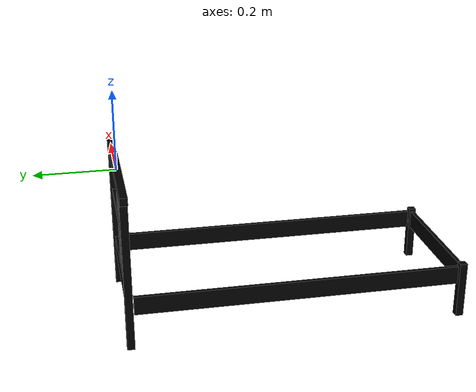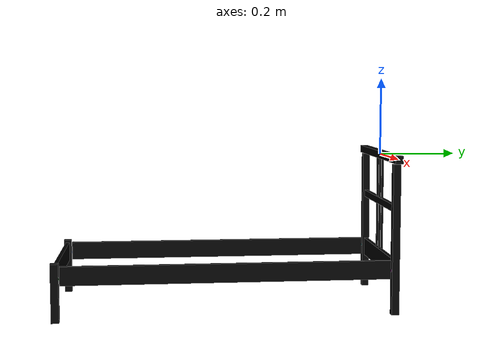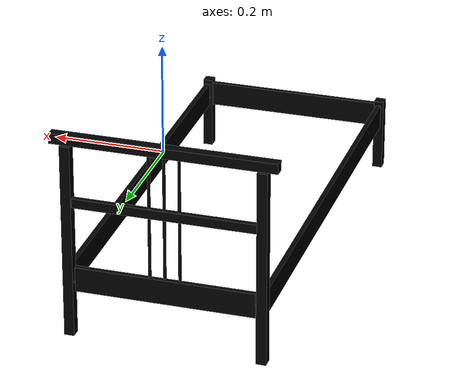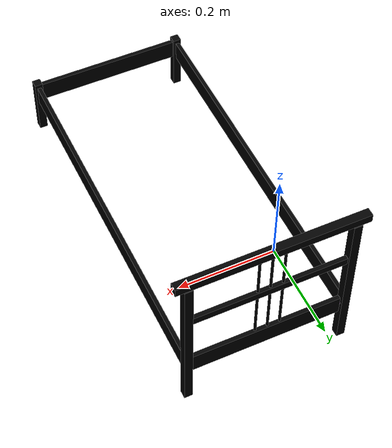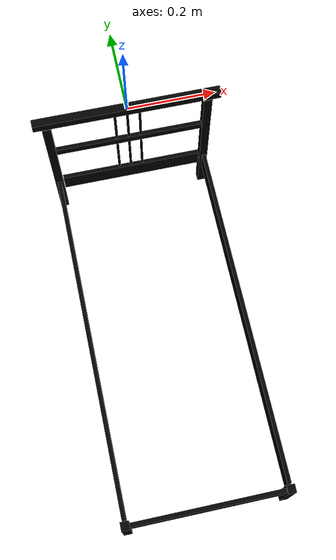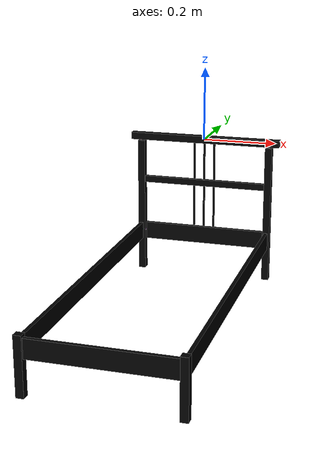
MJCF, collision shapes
<mujoco model="bed_dalselv_0270">
  <custom>
    <numeric data="-0.100755 0.02183 0.009622 1.0 0.0 0.0 0.0" name="0_part0_initpos" />
    <numeric data="0.044864 -0.122086 0.009814 0.707093 -0.707093 -0.004354 0.004354" name="9_part9_initpos" />
    <numeric data="-0.207929 -0.128858 0.009814 0.707033 -0.707033 -0.01023 0.010229" name="8_part8_initpos" />
    <numeric data="0.270941 -0.036442 0.00949 0.707107 -0.707107 -0.0 -0.0" name="7_part7_initpos" />
    <numeric data="-0.105714 0.208335 0.004796 0.707107 -0.707107 0.000417 -0.000417" name="6_part6_initpos" />
    <numeric data="-0.1019 0.299963 0.004796 0.707107 0.707107 -3.5e-05 -3.5e-05" name="5_part5_initpos" />
    <numeric data="0.165347 0.056731 0.002345 -0.707107 0.0 0.707107 0.0" name="4_part4_initpos" />
    <numeric data="-0.36839 0.044837 0.007095 -0.707107 0.0 0.707107 0.0" name="3_part3_initpos" />
    <numeric data="-0.10077 0.104425 0.009487 0.707107 0.0 0.707107 0.0" name="2_part2_initpos" />
    <numeric data="0.381998 0.246236 0.00491 0.707205 -0.707009 0.0 -0.0" name="1_part1_initpos" />
  </custom>
  <asset>
    <mesh file="bed_dalselv_0270/0.stl" name="part0" scale="0.00038 0.00038 0.00038" />
    <mesh file="bed_dalselv_0270/9.stl" name="part9" scale="0.00038 0.00038 0.00038" />
    <mesh file="bed_dalselv_0270/8.stl" name="part8" scale="0.00038 0.00038 0.00038" />
    <mesh file="bed_dalselv_0270/7.stl" name="part7" scale="0.00038 0.00038 0.00038" />
    <mesh file="bed_dalselv_0270/6.stl" name="part6" scale="0.00038 0.00038 0.00038" />
    <mesh file="bed_dalselv_0270/5.stl" name="part5" scale="0.00038 0.00038 0.00038" />
    <mesh file="bed_dalselv_0270/4.stl" name="part4" scale="0.00038 0.00038 0.00038" />
    <mesh file="bed_dalselv_0270/3.stl" name="part3" scale="0.00038 0.00038 0.00038" />
    <mesh file="bed_dalselv_0270/2.stl" name="part2" scale="0.00038 0.00038 0.00038" />
    <mesh file="bed_dalselv_0270/14.stl" name="part14" scale="0.00038 0.00038 0.00038" />
    <mesh file="bed_dalselv_0270/13.stl" name="part13" scale="0.00038 0.00038 0.00038" />
    <mesh file="bed_dalselv_0270/12.stl" name="part12" scale="0.00038 0.00038 0.00038" />
    <mesh file="bed_dalselv_0270/11.stl" name="part11" scale="0.00038 0.00038 0.00038" />
    <mesh file="bed_dalselv_0270/10.stl" name="part10" scale="0.00038 0.00038 0.00038" />
    <mesh file="bed_dalselv_0270/1.stl" name="part1" scale="0.00038 0.00038 0.00038" />
  </asset>
  <equality>
    <weld active="false" body1="2_part2" body2="6_part6" solimp="1 1 0.5" solref="0.01 0.3" />
    <weld active="false" body1="7_part7" body2="6_part6" solimp="1 1 0.5" solref="0.01 0.3" />
    <weld active="false" body1="2_part2" body2="3_part3" solimp="1 1 0.5" solref="0.01 0.3" />
    <weld active="false" body1="7_part7" body2="3_part3" solimp="1 1 0.5" solref="0.01 0.3" />
    <weld active="false" body1="9_part9" body2="5_part5" solimp="1 1 0.5" solref="0.01 0.3" />
    <weld active="false" body1="8_part8" body2="5_part5" solimp="1 1 0.5" solref="0.01 0.3" />
    <weld active="false" body1="2_part2" body2="1_part1" solimp="1 1 0.5" solref="0.01 0.3" />
    <weld active="false" body1="7_part7" body2="1_part1" solimp="1 1 0.5" solref="0.01 0.3" />
    <weld active="false" body1="9_part9" body2="4_part4" solimp="1 1 0.5" solref="0.01 0.3" />
    <weld active="false" body1="8_part8" body2="4_part4" solimp="1 1 0.5" solref="0.01 0.3" />
    <weld active="false" body1="0_part0" body2="2_part2" solimp="1 1 0.5" solref="0.01 0.3" />
    <weld active="false" body1="0_part0" body2="7_part7" solimp="1 1 0.5" solref="0.01 0.3" />
    <weld active="false" body1="9_part9" body2="3_part3" solimp="1 1 0.5" solref="0.01 0.3" />
    <weld active="false" body1="8_part8" body2="3_part3" solimp="1 1 0.5" solref="0.01 0.3" />
    <weld active="false" body1="4_part4" body2="2_part2" solimp="1 1 0.5" solref="0.01 0.3" />
    <weld active="false" body1="4_part4" body2="7_part7" solimp="1 1 0.5" solref="0.01 0.3" />
  </equality>
  <worldbody>
    <body name="0_part0" pos="1.9e-09 -1.5200000000000002e-10 0.0" quat="1 0 0 0">
      <geom conaffinity="0" contype="0" density="0" mesh="part0" name="0_part0_mesh" pos="0.0 0.0 0.0" rgba="0.82 0.71 0.55 1" type="mesh" />
      <site name="0_part0_horizontal_radius_site" pos="1.9e-09 -1.5200000000000002e-10 0.0" quat="1 0 0 0" rgba="0 0 0 0" size="0.00038" />
      <site name="0_part0_top_site" pos="1.9e-09 -1.1400000000000001e-10 0.009652009272" quat="1 0 0 0" rgba="0 0 0 0" size="0.00038" />
      <site name="0_part0_bottom_site" pos="1.9e-09 -1.1400000000000001e-10 -0.009652009272" quat="1 0 0 0" rgba="0 0 0 0" size="0.00038" />
      <site name="0_part0_corner_site8" pos="-0.2123439981 0.009652001026000001 0.009652009272" quat="1 0 0 0" rgba="0 0 0 0" size="0.0039900000000000005" />
      <site name="0_part0_corner_site7" pos="0.21234400190000002 0.009652001026000001 0.009652009272" quat="1 0 0 0" rgba="0 0 0 0" size="0.0039900000000000005" />
      <site name="0_part0_corner_site6" pos="0.21234400190000002 -0.009652001292 0.009652009272" quat="1 0 0 0" rgba="0 0 0 0" size="0.0039900000000000005" />
      <site name="0_part0_corner_site5" pos="-0.2123439981 -0.009652001292 0.009652009272" quat="1 0 0 0" rgba="0 0 0 0" size="0.0039900000000000005" />
      <site name="0_part0_corner_site4" pos="-0.2123439981 0.009652001026000001 -0.009652009272" quat="1 0 0 0" rgba="0 0 0 0" size="0.0039900000000000005" />
      <site name="0_part0_corner_site3" pos="0.21234400190000002 0.009652001026000001 -0.009652009272" quat="1 0 0 0" rgba="0 0 0 0" size="0.0039900000000000005" />
      <site name="0_part0_corner_site2" pos="0.21234400190000002 -0.009652001292 -0.009652009272" quat="1 0 0 0" rgba="0 0 0 0" size="0.0039900000000000005" />
      <site name="0_part0_corner_site1" pos="-0.2123439981 -0.009652001292 -0.009652009272" quat="1 0 0 0" rgba="0 0 0 0" size="0.0039900000000000005" />
      <geom density="50" name="noviz_collision_0_part0_0" pos="0.0 4.598e-07 0.0001350976" quat="1 0 0 0" rgba="0 0 0 0" size="0.21234399999999998 0.0096524598 0.009787109" solref="0.001 1" type="box" />
      <site name="top-tallleg,0,conn_site2" pos="-0.18506 0.0 -0.009652007600000002" quat="1 0 0 0" rgba="0.9019 0.0980 0.2941 0.3" size="0.0038" />
      <site name="top-tallleg,0,conn_site1" pos="0.18354 0.0 -0.009652007600000002" quat="1 0 0 0" rgba="0.9019 0.0980 0.2941 0.3" size="0.0038" />
    </body>
    <body name="9_part9" pos="0.18338800190000001 -0.849376031388 -0.323342009272" quat="1 0 0 0">
      <geom conaffinity="0" contype="0" density="0" mesh="part9" name="9_part9_mesh" pos="0.0 0.0 0.0" rgba="0.82 0.71 0.55 1" type="mesh" />
      <site name="9_part9_horizontal_radius_site" pos="0.0 -7.600000000000001e-11 0.0" quat="1 0 0 0" rgba="0 0 0 0" size="0.00038" />
      <site name="9_part9_top_site" pos="0.0 -3.8000000000000004e-11 0.07239" quat="1 0 0 0" rgba="0 0 0 0" size="0.00038" />
      <site name="9_part9_bottom_site" pos="0.0 -3.8000000000000004e-11 -0.07239" quat="1 0 0 0" rgba="0 0 0 0" size="0.00038" />
      <site name="9_part9_corner_site8" pos="-0.009651999999999999 0.009652032338 0.07239" quat="1 0 0 0" rgba="0 0 0 0" size="0.0039900000000000005" />
      <site name="9_part9_corner_site7" pos="0.009651999999999999 0.009652032338 0.07239" quat="1 0 0 0" rgba="0 0 0 0" size="0.0039900000000000005" />
      <site name="9_part9_corner_site6" pos="0.009651999999999999 -0.009652032452 0.07239" quat="1 0 0 0" rgba="0 0 0 0" size="0.0039900000000000005" />
      <site name="9_part9_corner_site5" pos="-0.009651999999999999 -0.009652032452 0.07239" quat="1 0 0 0" rgba="0 0 0 0" size="0.0039900000000000005" />
      <site name="9_part9_corner_site4" pos="-0.009651999999999999 0.009652032338 -0.07239" quat="1 0 0 0" rgba="0 0 0 0" size="0.0039900000000000005" />
      <site name="9_part9_corner_site3" pos="0.009651999999999999 0.009652032338 -0.07239" quat="1 0 0 0" rgba="0 0 0 0" size="0.0039900000000000005" />
      <site name="9_part9_corner_site2" pos="0.009651999999999999 -0.009652032452 -0.07239" quat="1 0 0 0" rgba="0 0 0 0" size="0.0039900000000000005" />
      <site name="9_part9_corner_site1" pos="-0.009651999999999999 -0.009652032452 -0.07239" quat="1 0 0 0" rgba="0 0 0 0" size="0.0039900000000000005" />
      <geom density="50" name="noviz_collision_9_part9_0" pos="-9.612480000000002e-05 9.62046e-05 0.00129238" quat="1 0 0 0" rgba="0 0 0 0" size="0.0095558714 0.009748170399999999 0.07368238" solref="0.001 1" type="box" />
      <site name="shortleg-sidebottom1,0,conn_site1" pos="-0.0012064962000000001 0.011248038 0.03477" quat="0.7071067 0.7071068 0 0" rgba="0.2352 0.7058 0.2941 0.3" size="0.0038" />
      <site name="shortleg-bottomboard,0,180,conn_site2" pos="-0.0088160038 4.3232600000000003e-05 0.042902" quat="0.7071067 0 0.7071068 0" rgba="1.0 0.8823 0.0980 0.3" size="0.0038" />
    </body>
    <body name="8_part8" pos="-0.1833879981 -0.849376031388 -0.323342009272" quat="1 0 0 0">
      <geom conaffinity="0" contype="0" density="0" mesh="part8" name="8_part8_mesh" pos="0.0 0.0 0.0" rgba="0.82 0.71 0.55 1" type="mesh" />
      <site name="8_part8_horizontal_radius_site" pos="0.0 -7.600000000000001e-11 0.0" quat="1 0 0 0" rgba="0 0 0 0" size="0.00038" />
      <site name="8_part8_top_site" pos="0.0 -3.8000000000000004e-11 0.07239" quat="1 0 0 0" rgba="0 0 0 0" size="0.00038" />
      <site name="8_part8_bottom_site" pos="0.0 -3.8000000000000004e-11 -0.07239" quat="1 0 0 0" rgba="0 0 0 0" size="0.00038" />
      <site name="8_part8_corner_site8" pos="-0.009651999999999999 0.009652032338 0.07239" quat="1 0 0 0" rgba="0 0 0 0" size="0.0039900000000000005" />
      <site name="8_part8_corner_site7" pos="0.009651999999999999 0.009652032338 0.07239" quat="1 0 0 0" rgba="0 0 0 0" size="0.0039900000000000005" />
      <site name="8_part8_corner_site6" pos="0.009651999999999999 -0.009652032452 0.07239" quat="1 0 0 0" rgba="0 0 0 0" size="0.0039900000000000005" />
      <site name="8_part8_corner_site5" pos="-0.009651999999999999 -0.009652032452 0.07239" quat="1 0 0 0" rgba="0 0 0 0" size="0.0039900000000000005" />
      <site name="8_part8_corner_site4" pos="-0.009651999999999999 0.009652032338 -0.07239" quat="1 0 0 0" rgba="0 0 0 0" size="0.0039900000000000005" />
      <site name="8_part8_corner_site3" pos="0.009651999999999999 0.009652032338 -0.07239" quat="1 0 0 0" rgba="0 0 0 0" size="0.0039900000000000005" />
      <site name="8_part8_corner_site2" pos="0.009651999999999999 -0.009652032452 -0.07239" quat="1 0 0 0" rgba="0 0 0 0" size="0.0039900000000000005" />
      <site name="8_part8_corner_site1" pos="-0.009651999999999999 -0.009652032452 -0.07239" quat="1 0 0 0" rgba="0 0 0 0" size="0.0039900000000000005" />
      <geom density="50" name="noviz_collision_8_part8_0" pos="9.612480000000002e-05 9.62046e-05 0.00129238" quat="1 0 0 0" rgba="0 0 0 0" size="0.009748121 0.009748170399999999 0.07368238" solref="0.001 1" type="box" />
      <site name="shortleg-bottomboard,0,180,conn_site1" pos="0.0089680038 4.3232600000000003e-05 0.044422" quat="0.7071067 0 -0.7071068 0" rgba="1.0 0.8823 0.0980 0.3" size="0.0038" />
      <site name="shortleg-sideboard,0,conn_site1" pos="0.0012065076 0.009956076 0.038342" quat="0.7071067 0.7071068 0 0" rgba="0.2627 0.3882 0.8470 0.3" size="0.0038" />
    </body>
    <body name="7_part7" pos="-0.1833879981 -1.5200000000000002e-10 -0.202692009272" quat="1 0 0 0">
      <geom conaffinity="0" contype="0" density="0" mesh="part7" name="7_part7_mesh" pos="0.0 0.0 0.0" rgba="0.82 0.71 0.55 1" type="mesh" />
      <site name="7_part7_horizontal_radius_site" pos="0.0 -1.5200000000000002e-10 0.0" quat="1 0 0 0" rgba="0 0 0 0" size="0.00038" />
      <site name="7_part7_top_site" pos="0.0 -1.1400000000000001e-10 0.19304000000000002" quat="1 0 0 0" rgba="0 0 0 0" size="0.00038" />
      <site name="7_part7_bottom_site" pos="0.0 -1.1400000000000001e-10 -0.19304000000000002" quat="1 0 0 0" rgba="0 0 0 0" size="0.00038" />
      <site name="7_part7_corner_site8" pos="-0.009651999999999999 0.009652001026000001 0.19304000000000002" quat="1 0 0 0" rgba="0 0 0 0" size="0.0039900000000000005" />
      <site name="7_part7_corner_site7" pos="0.009651999999999999 0.009652001026000001 0.19304000000000002" quat="1 0 0 0" rgba="0 0 0 0" size="0.0039900000000000005" />
      <site name="7_part7_corner_site6" pos="0.009651999999999999 -0.009652001292 0.19304000000000002" quat="1 0 0 0" rgba="0 0 0 0" size="0.0039900000000000005" />
      <site name="7_part7_corner_site5" pos="-0.009651999999999999 -0.009652001292 0.19304000000000002" quat="1 0 0 0" rgba="0 0 0 0" size="0.0039900000000000005" />
      <site name="7_part7_corner_site4" pos="-0.009651999999999999 0.009652001026000001 -0.19304000000000002" quat="1 0 0 0" rgba="0 0 0 0" size="0.0039900000000000005" />
      <site name="7_part7_corner_site3" pos="0.009651999999999999 0.009652001026000001 -0.19304000000000002" quat="1 0 0 0" rgba="0 0 0 0" size="0.0039900000000000005" />
      <site name="7_part7_corner_site2" pos="0.009651999999999999 -0.009652001292 -0.19304000000000002" quat="1 0 0 0" rgba="0 0 0 0" size="0.0039900000000000005" />
      <site name="7_part7_corner_site1" pos="-0.009651999999999999 -0.009652001292 -0.19304000000000002" quat="1 0 0 0" rgba="0 0 0 0" size="0.0039900000000000005" />
      <geom density="50" name="noviz_collision_7_part7_0" pos="6.75032e-05 -6.58616e-05 -0.0014962956000000001" quat="1 0 0 0" rgba="0 0 0 0" size="0.0097195032 0.009586138400000001 0.191543712" solref="0.001 1" type="box" />
      <site name="tallleg-top,0,conn_site2" pos="-0.0016719962 0.0 0.19304000000000002" quat="1 0 0 0" rgba="0.9019 0.0980 0.2941 0.3" size="0.0038" />
      <site name="tallleg-centerpiece,0,180,conn_site5" pos="0.0085880038 4.3232600000000003e-05 0.074632" quat="0.7071067 0 -0.7071068 0" rgba="0.9607 0.5098 0.1921 0.3" size="0.0038" />
      <site name="tallleg-bottompiece,0,180,conn_site2" pos="0.0088160038 4.3232600000000003e-05 -0.075848" quat="0.7071067 0 -0.7071068 0" rgba="0.5686 0.1176 0.7058 0.3" size="0.0038" />
      <site name="tallleg-sideboard,0,conn_site1" pos="0.0012065076 -0.008702 -0.074328" quat="0.7071067 -0.7071068 0 0" rgba="0.2745 0.9411 0.9411 0.3" size="0.0038" />
    </body>
    <body name="6_part6" pos="1.9e-09 8.6464402e-05 -0.27990800927200005" quat="1 0 0 0">
      <geom conaffinity="0" contype="0" density="0" mesh="part6" name="6_part6_mesh" pos="0.0 0.0 0.0" rgba="0.82 0.71 0.55 1" type="mesh" />
      <site name="6_part6_horizontal_radius_site" pos="-4.1800000000000006e-10 0.0 -0.0" quat="1 0 0 0" rgba="0 0 0 0" size="0.00038" />
      <site name="6_part6_top_site" pos="-4.1800000000000006e-10 0.0 0.024130000000000002" quat="1 0 0 0" rgba="0 0 0 0" size="0.00038" />
      <site name="6_part6_bottom_site" pos="-4.1800000000000006e-10 0.0 -0.024130000000000002" quat="1 0 0 0" rgba="0 0 0 0" size="0.00038" />
      <site name="6_part6_corner_site8" pos="-0.17856200041800002 0.004826001748 0.024130000000000002" quat="1 0 0 0" rgba="0 0 0 0" size="0.0039900000000000005" />
      <site name="6_part6_corner_site7" pos="0.178561999582 0.004826001748 0.024130000000000002" quat="1 0 0 0" rgba="0 0 0 0" size="0.0039900000000000005" />
      <site name="6_part6_corner_site6" pos="0.178561999582 -0.004826001748 0.024130000000000002" quat="1 0 0 0" rgba="0 0 0 0" size="0.0039900000000000005" />
      <site name="6_part6_corner_site5" pos="-0.17856200041800002 -0.004826001748 0.024130000000000002" quat="1 0 0 0" rgba="0 0 0 0" size="0.0039900000000000005" />
      <site name="6_part6_corner_site4" pos="-0.17856200041800002 0.004826001748 -0.024130000000000002" quat="1 0 0 0" rgba="0 0 0 0" size="0.0039900000000000005" />
      <site name="6_part6_corner_site3" pos="0.178561999582 0.004826001748 -0.024130000000000002" quat="1 0 0 0" rgba="0 0 0 0" size="0.0039900000000000005" />
      <site name="6_part6_corner_site2" pos="0.178561999582 -0.004826001748 -0.024130000000000002" quat="1 0 0 0" rgba="0 0 0 0" size="0.0039900000000000005" />
      <site name="6_part6_corner_site1" pos="-0.17856200041800002 -0.004826001748 -0.024130000000000002" quat="1 0 0 0" rgba="0 0 0 0" size="0.0039900000000000005" />
      <geom density="50" name="noviz_collision_6_part6_0" pos="0.0 0.0 9.10328e-05" quat="1 0 0 0" rgba="0 0 0 0" size="0.171 0.0048259999999999996 0.0242210328" solref="0.001 1" type="box" />
      <site name="bottompiece-tallleg,0,180,conn_site2" pos="-0.174572 -4.3232600000000003e-05 0.0013680152" quat="0.7071067 0 -0.7071068 0" rgba="0.5686 0.1176 0.7058 0.3" size="0.0038" />
      <site name="bottompiece-tallleg,0,180,conn_site1" pos="0.17442000000000002 -4.3232600000000003e-05 -0.0058519848000000005" quat="0.7071067 0 0.7071068 0" rgba="0.5686 0.1176 0.7058 0.3" size="0.0038" />
    </body>
    <body name="5_part5" pos="1.9e-09 -0.8492895361299999 -0.27990800927200005" quat="1 0 0 0">
      <geom conaffinity="0" contype="0" density="0" mesh="part5" name="5_part5_mesh" pos="0.0 0.0 0.0" rgba="0.82 0.71 0.55 1" type="mesh" />
      <site name="5_part5_horizontal_radius_site" pos="-4.1800000000000006e-10 0.0 0.0" quat="1 0 0 0" rgba="0 0 0 0" size="0.00038" />
      <site name="5_part5_top_site" pos="-4.1800000000000006e-10 0.0 0.024130000000000002" quat="1 0 0 0" rgba="0 0 0 0" size="0.00038" />
      <site name="5_part5_bottom_site" pos="-4.1800000000000006e-10 0.0 -0.024130000000000002" quat="1 0 0 0" rgba="0 0 0 0" size="0.00038" />
      <site name="5_part5_corner_site8" pos="-0.17856200041800002 0.0048259999999999996 0.024130000000000002" quat="1 0 0 0" rgba="0 0 0 0" size="0.0039900000000000005" />
      <site name="5_part5_corner_site7" pos="0.178561999582 0.0048259999999999996 0.024130000000000002" quat="1 0 0 0" rgba="0 0 0 0" size="0.0039900000000000005" />
      <site name="5_part5_corner_site6" pos="0.178561999582 -0.0048259999999999996 0.024130000000000002" quat="1 0 0 0" rgba="0 0 0 0" size="0.0039900000000000005" />
      <site name="5_part5_corner_site5" pos="-0.17856200041800002 -0.0048259999999999996 0.024130000000000002" quat="1 0 0 0" rgba="0 0 0 0" size="0.0039900000000000005" />
      <site name="5_part5_corner_site4" pos="-0.17856200041800002 0.0048259999999999996 -0.024130000000000002" quat="1 0 0 0" rgba="0 0 0 0" size="0.0039900000000000005" />
      <site name="5_part5_corner_site3" pos="0.178561999582 0.0048259999999999996 -0.024130000000000002" quat="1 0 0 0" rgba="0 0 0 0" size="0.0039900000000000005" />
      <site name="5_part5_corner_site2" pos="0.178561999582 -0.0048259999999999996 -0.024130000000000002" quat="1 0 0 0" rgba="0 0 0 0" size="0.0039900000000000005" />
      <site name="5_part5_corner_site1" pos="-0.17856200041800002 -0.0048259999999999996 -0.024130000000000002" quat="1 0 0 0" rgba="0 0 0 0" size="0.0039900000000000005" />
      <geom density="50" name="noviz_collision_5_part5_0" pos="0.0 0.0 9.10328e-05" quat="1 0 0 0" rgba="0 0 0 0" size="0.178562 0.0048259999999999996 0.0242210328" solref="0.001 1" type="box" />
      <site name="bottomboard-shortleg,0,180,conn_site2" pos="0.174572 -4.33238e-05 -0.0005319848" quat="0.7071067 0 0.7071068 0" rgba="1.0 0.8823 0.0980 0.3" size="0.0038" />
      <site name="bottomboard-shortleg,0,180,conn_site1" pos="-0.17442000000000002 -4.33238e-05 0.0009880152000000001" quat="0.7071067 0 -0.7071068 0" rgba="1.0 0.8823 0.0980 0.3" size="0.0038" />
    </body>
    <body name="4_part4" pos="0.180975006802 -0.42460154715 -0.27990800927200005" quat="1 0 0 0">
      <geom conaffinity="0" contype="0" density="0" mesh="part12" name="4_part4_mesh" pos="0.0 0.0 0.0" rgba="0.82 0.71 0.55 1" type="mesh" />
      <site name="4_part4_horizontal_radius_site" pos="-1.5200000000000002e-10 1.748e-09 0.0" quat="1 0 0 0" rgba="0 0 0 0" size="0.00038" />
      <site name="4_part4_top_site" pos="-1.5200000000000002e-10 1.748e-09 0.024130000000000002" quat="1 0 0 0" rgba="0 0 0 0" size="0.00038" />
      <site name="4_part4_bottom_site" pos="-1.5200000000000002e-10 1.748e-09 -0.024130000000000002" quat="1 0 0 0" rgba="0 0 0 0" size="0.00038" />
      <site name="4_part4_corner_site8" pos="-0.007239005054 0.41986201276799995 0.024130000000000002" quat="1 0 0 0" rgba="0 0 0 0" size="0.0039900000000000005" />
      <site name="4_part4_corner_site7" pos="0.007239004788 0.41986201276799995 0.024130000000000002" quat="1 0 0 0" rgba="0 0 0 0" size="0.0039900000000000005" />
      <site name="4_part4_corner_site6" pos="0.007239004788 -0.419862009272 0.024130000000000002" quat="1 0 0 0" rgba="0 0 0 0" size="0.0039900000000000005" />
      <site name="4_part4_corner_site5" pos="-0.007239005054 -0.419862009272 0.024130000000000002" quat="1 0 0 0" rgba="0 0 0 0" size="0.0039900000000000005" />
      <site name="4_part4_corner_site4" pos="-0.007239005054 0.41986201276799995 -0.024130000000000002" quat="1 0 0 0" rgba="0 0 0 0" size="0.0039900000000000005" />
      <site name="4_part4_corner_site3" pos="0.007239004788 0.41986201276799995 -0.024130000000000002" quat="1 0 0 0" rgba="0 0 0 0" size="0.0039900000000000005" />
      <site name="4_part4_corner_site2" pos="0.007239004788 -0.419862009272 -0.024130000000000002" quat="1 0 0 0" rgba="0 0 0 0" size="0.0039900000000000005" />
      <site name="4_part4_corner_site1" pos="-0.007239005054 -0.419862009272 -0.024130000000000002" quat="1 0 0 0" rgba="0 0 0 0" size="0.0039900000000000005" />
      <geom density="50" name="noviz_collision_4_part4_0" pos="0.0023749886000000004 -1.406e-07 0.00018949080000000003" quat="1 0 0 0" rgba="0 0 0 0" size="0.004750000000000001 0.412262 0.02375" solref="0.001 1" type="box" />
      <site name="sidebottom1-tallleg,0,conn_site1" pos="0.0012064962000000001 0.41574735999999995 -0.0031919848" quat="0.7071067 -0.7071068 0 0" rgba="0.9411 0.1960 0.9019 0.3" size="0.0038" />
      <site name="sidebottom1-shortleg,0,conn_site1" pos="0.0012064962000000001 -0.41352664000000006 -0.008663996200000001" quat="0.7071067 0.7071068 0 0" rgba="0.2352 0.7058 0.2941 0.3" size="0.0038" />
    </body>
    <body name="3_part3" pos="-0.180975 -0.42460154715 -0.27990800927200005" quat="1 0 0 0">
      <geom conaffinity="0" contype="0" density="0" mesh="part11" name="3_part3_mesh" pos="0.0 0.0 0.0" rgba="0.82 0.71 0.55 1" type="mesh" />
      <site name="3_part3_horizontal_radius_site" pos="0.0 1.748e-09 0.0" quat="1 0 0 0" rgba="0 0 0 0" size="0.00038" />
      <site name="3_part3_top_site" pos="0.0 1.748e-09 0.024130000000000002" quat="1 0 0 0" rgba="0 0 0 0" size="0.00038" />
      <site name="3_part3_bottom_site" pos="0.0 1.748e-09 -0.024130000000000002" quat="1 0 0 0" rgba="0 0 0 0" size="0.00038" />
      <site name="3_part3_corner_site8" pos="-0.007239001899999999 0.41986201276799995 0.024130000000000002" quat="1 0 0 0" rgba="0 0 0 0" size="0.0039900000000000005" />
      <site name="3_part3_corner_site7" pos="0.007239001899999999 0.41986201276799995 0.024130000000000002" quat="1 0 0 0" rgba="0 0 0 0" size="0.0039900000000000005" />
      <site name="3_part3_corner_site6" pos="0.007239001899999999 -0.419862009272 0.024130000000000002" quat="1 0 0 0" rgba="0 0 0 0" size="0.0039900000000000005" />
      <site name="3_part3_corner_site5" pos="-0.007239001899999999 -0.419862009272 0.024130000000000002" quat="1 0 0 0" rgba="0 0 0 0" size="0.0039900000000000005" />
      <site name="3_part3_corner_site4" pos="-0.007239001899999999 0.41986201276799995 -0.024130000000000002" quat="1 0 0 0" rgba="0 0 0 0" size="0.0039900000000000005" />
      <site name="3_part3_corner_site3" pos="0.007239001899999999 0.41986201276799995 -0.024130000000000002" quat="1 0 0 0" rgba="0 0 0 0" size="0.0039900000000000005" />
      <site name="3_part3_corner_site2" pos="0.007239001899999999 -0.419862009272 -0.024130000000000002" quat="1 0 0 0" rgba="0 0 0 0" size="0.0039900000000000005" />
      <site name="3_part3_corner_site1" pos="-0.007239001899999999 -0.419862009272 -0.024130000000000002" quat="1 0 0 0" rgba="0 0 0 0" size="0.0039900000000000005" />
      <geom density="50" name="noviz_collision_3_part3_0" pos="-0.0023749886000000004 -1.406e-07 0.00018949080000000003" quat="1 0 0 0" rgba="0 0 0 0" size="0.004750000000000001 0.412262 0.02375" solref="0.001 1" type="box" />
      <site name="sideboard-shortleg,0,conn_site1" pos="-0.0012064962000000001 -0.41481864 -0.0050919848" quat="0.7071067 0.7071068 0 0" rgba="0.2627 0.3882 0.8470 0.3" size="0.0038" />
      <site name="sideboard-tallleg,0,conn_site1" pos="-0.0012064962000000001 0.41589936000000005 0.0028880152" quat="0.7071067 -0.7071068 0 0" rgba="0.2745 0.9411 0.9411 0.3" size="0.0038" />
    </body>
    <body name="2_part2" pos="0.18338800190000001 -1.5200000000000002e-10 -0.202692009272" quat="1 0 0 0">
      <geom conaffinity="0" contype="0" density="0" mesh="part10" name="2_part2_mesh" pos="0.0 0.0 0.0" rgba="0.82 0.71 0.55 1" type="mesh" />
      <site name="2_part2_horizontal_radius_site" pos="0.0 -1.5200000000000002e-10 0.0" quat="1 0 0 0" rgba="0 0 0 0" size="0.00038" />
      <site name="2_part2_top_site" pos="0.0 -1.1400000000000001e-10 0.19304000000000002" quat="1 0 0 0" rgba="0 0 0 0" size="0.00038" />
      <site name="2_part2_bottom_site" pos="0.0 -1.1400000000000001e-10 -0.19304000000000002" quat="1 0 0 0" rgba="0 0 0 0" size="0.00038" />
      <site name="2_part2_corner_site8" pos="-0.009651999999999999 0.009652001026000001 0.19304000000000002" quat="1 0 0 0" rgba="0 0 0 0" size="0.0039900000000000005" />
      <site name="2_part2_corner_site7" pos="0.009651999999999999 0.009652001026000001 0.19304000000000002" quat="1 0 0 0" rgba="0 0 0 0" size="0.0039900000000000005" />
      <site name="2_part2_corner_site6" pos="0.009651999999999999 -0.009652001292 0.19304000000000002" quat="1 0 0 0" rgba="0 0 0 0" size="0.0039900000000000005" />
      <site name="2_part2_corner_site5" pos="-0.009651999999999999 -0.009652001292 0.19304000000000002" quat="1 0 0 0" rgba="0 0 0 0" size="0.0039900000000000005" />
      <site name="2_part2_corner_site4" pos="-0.009651999999999999 0.009652001026000001 -0.19304000000000002" quat="1 0 0 0" rgba="0 0 0 0" size="0.0039900000000000005" />
      <site name="2_part2_corner_site3" pos="0.009651999999999999 0.009652001026000001 -0.19304000000000002" quat="1 0 0 0" rgba="0 0 0 0" size="0.0039900000000000005" />
      <site name="2_part2_corner_site2" pos="0.009651999999999999 -0.009652001292 -0.19304000000000002" quat="1 0 0 0" rgba="0 0 0 0" size="0.0039900000000000005" />
      <site name="2_part2_corner_site1" pos="-0.009651999999999999 -0.009652001292 -0.19304000000000002" quat="1 0 0 0" rgba="0 0 0 0" size="0.0039900000000000005" />
      <geom density="50" name="noviz_collision_2_part2_0" pos="-6.75032e-05 -6.58616e-05 -0.0014962956000000001" quat="1 0 0 0" rgba="0 0 0 0" size="0.009584493 0.009586138400000001 0.191543712" solref="0.001 1" type="box" />
      <site name="tallleg-top,0,conn_site1" pos="0.00015199620000000001 0.0 0.19304000000000002" quat="1 0 0 0" rgba="0.9019 0.0980 0.2941 0.3" size="0.0038" />
      <site name="tallleg-centerpiece,0,180,conn_site4" pos="-0.00779 4.3232600000000003e-05 0.077976" quat="0.7071067 0 0.7071068 0" rgba="0.9607 0.5098 0.1921 0.3" size="0.0038" />
      <site name="tallleg-bottompiece,0,180,conn_site1" pos="-0.0089680038 4.3232600000000003e-05 -0.083068" quat="0.7071067 0 0.7071068 0" rgba="0.5686 0.1176 0.7058 0.3" size="0.0038" />
      <site name="tallleg-sidebottom1,0,conn_site1" pos="-0.0012064962000000001 -0.008854 -0.08040800000000001" quat="0.7071067 -0.7071068 0 0" rgba="0.9411 0.1960 0.9019 0.3" size="0.0038" />
    </body>
    <body name="1_part1" pos="-3.1919999999999997e-09 8.6464402e-05 -0.125476011438" quat="1 0 0 0">
      <geom conaffinity="0" contype="0" density="1" mesh="part1" name="1_part1_mesh" pos="0.0 0.0 0.0" rgba="0.82 0.71 0.55 1" type="mesh" />
      <geom density="100" euler="0 0 0" name="noviz_collision_1_part1_1" pos="0.0 0.0 0.0" rgba="0 0 0 0" size="0.1748 0.004940000000000001 0.00912" solref="0.001 1" type="box" />
      <site name="1_part1_horizontal_radius_site" pos="4.5600000000000003e-10 0.0 1.5200000000000002e-10" quat="1 0 0 0" rgba="0 0 0 0" size="0.00038" />
      <site name="1_part1_top_site" pos="4.5600000000000003e-10 0.0 0.009652002318000001" quat="1 0 0 0" rgba="0 0 0 0" size="0.00038" />
      <site name="1_part1_bottom_site" pos="4.5600000000000003e-10 0.0 -0.009652002014" quat="1 0 0 0" rgba="0 0 0 0" size="0.00038" />
      <site name="1_part1_corner_site8" pos="-0.173736004636 0.004826001748 0.009652002318000001" quat="1 0 0 0" rgba="0 0 0 0" size="0.0039900000000000005" />
      <site name="1_part1_corner_site7" pos="0.17373600551 0.004826001748 0.009652002318000001" quat="1 0 0 0" rgba="0 0 0 0" size="0.0039900000000000005" />
      <site name="1_part1_corner_site6" pos="0.17373600551 -0.004826001748 0.009652002318000001" quat="1 0 0 0" rgba="0 0 0 0" size="0.0039900000000000005" />
      <site name="1_part1_corner_site5" pos="-0.173736004636 -0.004826001748 0.009652002318000001" quat="1 0 0 0" rgba="0 0 0 0" size="0.0039900000000000005" />
      <site name="1_part1_corner_site4" pos="-0.173736004636 0.004826001748 -0.009652002014" quat="1 0 0 0" rgba="0 0 0 0" size="0.0039900000000000005" />
      <site name="1_part1_corner_site3" pos="0.17373600551 0.004826001748 -0.009652002014" quat="1 0 0 0" rgba="0 0 0 0" size="0.0039900000000000005" />
      <site name="1_part1_corner_site2" pos="0.17373600551 -0.004826001748 -0.009652002014" quat="1 0 0 0" rgba="0 0 0 0" size="0.0039900000000000005" />
      <site name="1_part1_corner_site1" pos="-0.173736004636 -0.004826001748 -0.009652002014" quat="1 0 0 0" rgba="0 0 0 0" size="0.0039900000000000005" />
      <geom conaffinity="0" contype="0" density="0" mesh="part4" name="1_part1_mesh2" pos="-0.028499999999999998 0.0 0.0" rgba="0.82 0.71 0.55 1" type="mesh" />
      <geom density="50" name="noviz_collision_1_part1_2" pos="-0.028499999999999998 0.0 -0.006003984800000001" quat="1 0 0 0" rgba="0 0 0 0" size="0.00285 0.1216" solref="0.001 1" type="cylinder" />
      <geom conaffinity="0" contype="0" density="0" mesh="part3" name="1_part1_mesh3" pos="0.0 0.0 0.0" rgba="0.82 0.71 0.55 1" type="mesh" />
      <geom density="50" name="noviz_collision_1_part1_3" pos="0.0 0.0 -0.006003984800000001" quat="1 0 0 0" rgba="0 0 0 0" size="0.00285 0.1216" solref="0.001 1" type="cylinder" />
      <geom conaffinity="0" contype="0" density="0" mesh="part2" name="1_part1_mesh4" pos="0.028499999999999998 0.0 0.0" rgba="0.82 0.71 0.55 1" type="mesh" />
      <geom density="50" name="noviz_collision_1_part1_4" pos="0.028499999999999998 0.0 -0.006003984800000001" quat="1 0 0 0" rgba="0 0 0 0" size="0.00285 0.1216" solref="0.001 1" type="cylinder" />
      <site name="centerpiece-tallleg,0,180,conn_site5" pos="-0.1748 -4.3232600000000003e-05 -0.0025839848" quat="0.7071067 0 -0.7071068 0" rgba="0.9607 0.5098 0.1921 0.3" size="0.0038" />
      <site name="centerpiece-tallleg,0,180,conn_site4" pos="0.175598 -4.3232600000000003e-05 0.0007600114000000001" quat="0.7071067 0 0.7071068 0" rgba="0.9607 0.5098 0.1921 0.3" size="0.0038" />
    </body>
  </worldbody>
<actuator /><sensor /><contact /><default /></mujoco>
